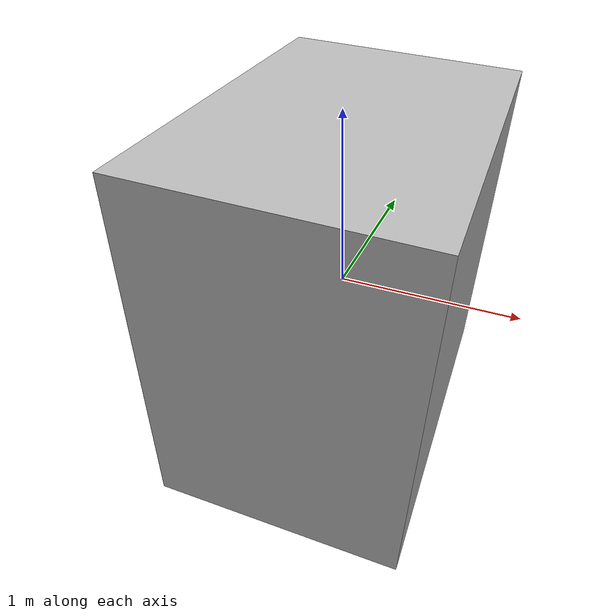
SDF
<?xml version="1.0" ?>

<sdf version="1.6">
  <model name="Aruco_2">
    <link name="link_0">
      <visual name="visual">
        <geometry>
          <mesh>
            <uri>meshes/aruco_2.dae</uri>
          </mesh>
        </geometry>
      </visual>
      <collision name="collision_0">
        <geometry>
          <mesh>
            <uri>meshes/aruco_2.dae</uri>
          </mesh>
        </geometry>
      </collision>
    </link>
  </model>
</sdf>
